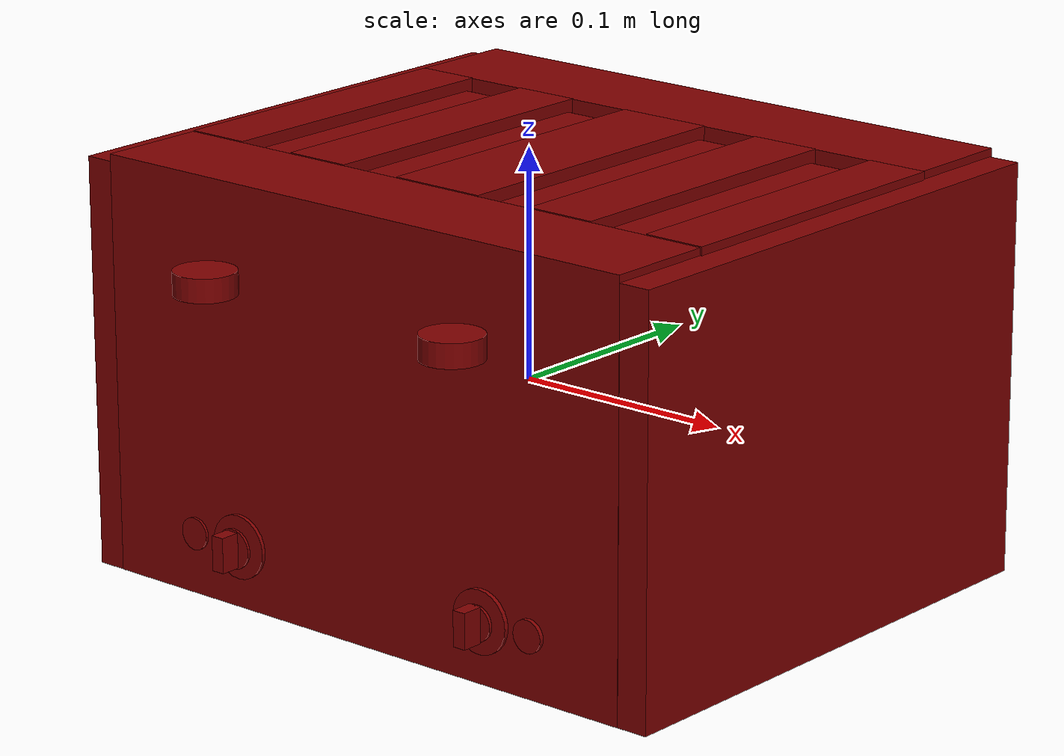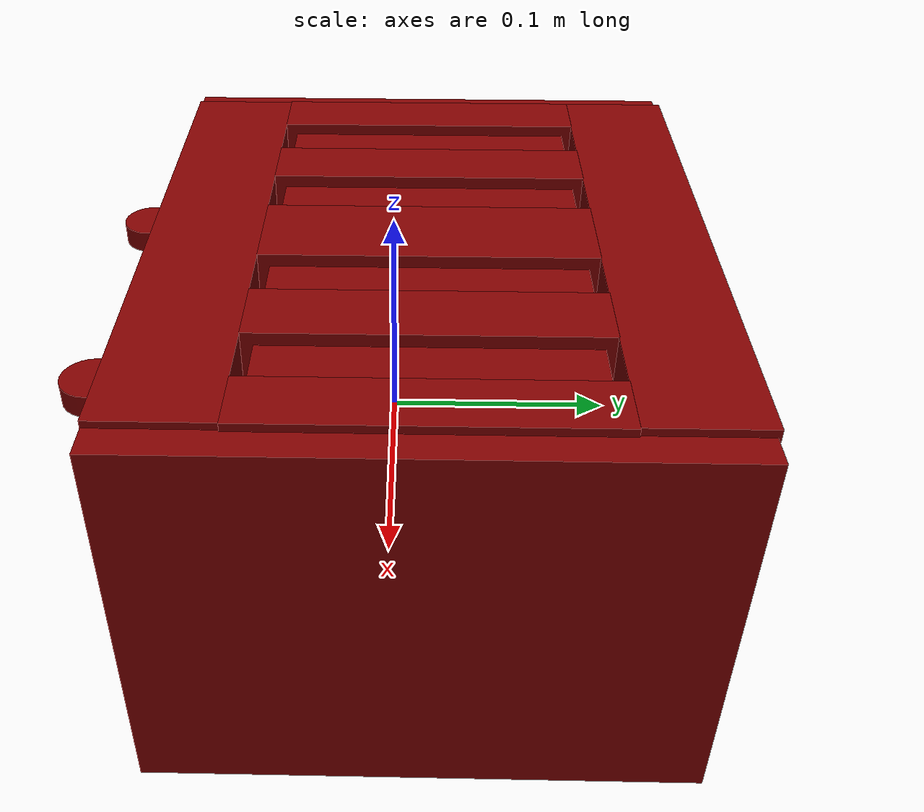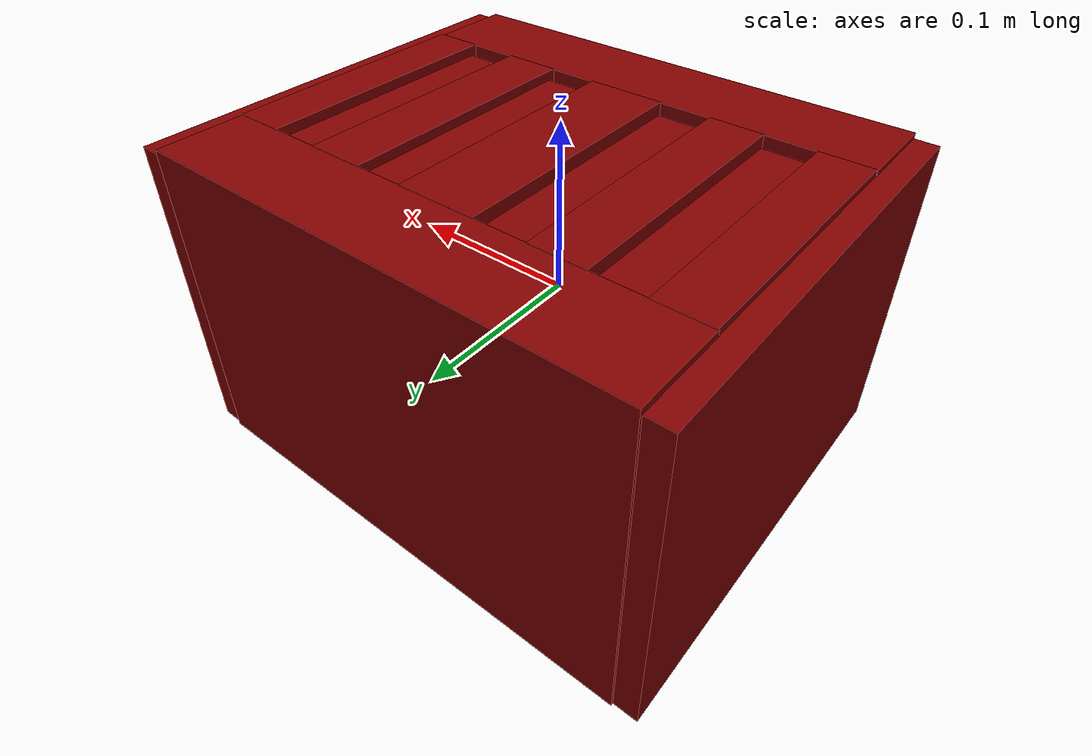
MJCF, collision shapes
<?xml version='1.0' encoding='UTF-8'?>
<mujoco model="model">
  <compiler angle="radian"/>
  <asset>
    <mesh file="visuals/Body001.obj" name="Body001_vis"/>
    <mesh file="visuals/Button001.obj" name="Button001_vis"/>
    <mesh file="visuals/Button002.obj" name="Button002_vis"/>
    <mesh file="visuals/Knob001.obj" name="Knob001_vis"/>
    <mesh file="visuals/Knob002.obj" name="Knob002_vis"/>
    <mesh file="visuals/Lever001.obj" name="Lever001_vis"/>
    <mesh file="visuals/Lever002.obj" name="Lever002_vis"/>
    <texture file="visuals/T_BC001.png" name="Body001_material" type="2d"/>
    <material name="Body001_material" rgba="1 1 1 1.0" texture="Body001_material" shininess="0.1" specular="4"/>
    <texture file="visuals/T_BC001.png" name="Button001_material" type="2d"/>
    <material name="Button001_material" rgba="1 1 1 1.0" texture="Button001_material" shininess="0.5" specular="0.3103448502657381"/>
    <texture file="visuals/T_BC001.png" name="Button002_material" type="2d"/>
    <material name="Button002_material" rgba="1 1 1 1.0" texture="Button002_material" shininess="0.5" specular="0.3103448502657381"/>
    <texture file="visuals/T_BC001.png" name="Knob001_material" type="2d"/>
    <material name="Knob001_material" rgba="1 1 1 1.0" texture="Knob001_material" shininess="0.5" specular="0.3103448502657381"/>
    <texture file="visuals/T_BC001.png" name="Knob002_material" type="2d"/>
    <material name="Knob002_material" rgba="1 1 1 1.0" texture="Knob002_material" shininess="0.5" specular="0.3103448502657381"/>
    <texture file="visuals/T_BC001.png" name="Lever001_material" type="2d"/>
    <material name="Lever001_material" rgba="1 1 1 1.0" texture="Lever001_material" shininess="0.5" specular="0.3103448502657381"/>
    <texture file="visuals/T_BC001.png" name="Lever002_material" type="2d"/>
    <material name="Lever002_material" rgba="1 1 1 1.0" texture="Lever002_material" shininess="0.5" specular="0.3103448502657381"/>
  </asset>
  <default>
    <default class="visual">
      <geom conaffinity="0" contype="0" group="1" type="mesh"/>
    </default>
    <default class="collision">
      <geom group="0" rgba="0.5 0 0 0.5"/>
    </default>
    <default class="spawn">
      <geom group="0" rgba="1 1 1 0.5" contype="0" conaffinity="0"/>
      <site group="0" rgba="1 1 1 0.5"/>
    </default>
    <default class="region">
      <geom group="1" conaffinity="0" contype="0" rgba="0 1 0 0"/>
    </default>
  </default>
  <worldbody>
    <body>
      <body name="object">
        <geom mesh="Body001_vis" type="mesh" solimp="0.998 0.998 0.001" solref="0.001 1" density="100" friction="0.95 0.3 0.1" class="visual" material="Body001_material"/>
        <geom class="collision" type="box" pos="-0.143082 0.014614 0.002146" size="0.007002524100244045 0.12076738476753235 0.08983761817216873" quat="1.0 0.0 0.0 0.0"/>
        <geom class="collision" type="box" pos="0.142438 0.014614 0.002146" size="0.007543185260146856 0.12076738476753235 0.08983761817216873" quat="1.0 0.0 0.0 0.0"/>
        <geom class="collision" type="box" pos="-0.000656 0.112086 0.003870" size="0.136514812707901 0.024617714807391167 0.09156198799610138" quat="1.0 0.0 0.0 0.0"/>
        <geom class="collision" type="box" pos="-0.000656 -0.081891 0.003719" size="0.136514812707901 0.024375740438699722 0.09141069650650024" quat="1.0 0.0 0.0 0.0"/>
        <geom class="collision" type="box" pos="0.065448 0.015127 0.017297" size="0.015857625752687454 0.07274053245782852 0.07828722149133682" quat="1.0 0.0 0.0 0.0"/>
        <geom class="collision" type="box" pos="-0.000656 0.012535 -0.080404" size="0.136514812707901 0.07725905627012253 0.007287883199751377" quat="1.0 0.0 0.0 0.0"/>
        <geom class="collision" type="cylinder" pos="-0.131358 -0.082886 -0.091699" size="0.004908865783363581 0.0035600834526121616" quat="1.0 0.0 0.0 0.0"/>
        <geom class="collision" type="cylinder" pos="0.131358 -0.082886 -0.091699" size="0.004908865783363581 0.003560083918273449" quat="1.0 0.0 0.0 0.0"/>
        <geom class="collision" type="cylinder" pos="-0.131358 0.117451 -0.091699" size="0.004908866249024868 0.003560083918273449" quat="1.0 0.0 0.0 0.0"/>
        <geom class="collision" type="cylinder" pos="0.131358 0.117451 -0.091699" size="0.004908865783363581 0.0035600841511040926" quat="1.0 0.0 0.0 0.0"/>
        <geom class="collision" type="cylinder" pos="-0.066387 -0.105122 -0.060590" size="0.01390498410910368 0.0029327014926820993" quat="0.707091748714447 -0.707118809223175 -0.0011263004271313548 0.0017355249729007483"/>
        <geom class="collision" type="cylinder" pos="0.066387 -0.105639 -0.060590" size="0.013726185075938702 0.002685973420739174" quat="0.7071068286895752 -0.7071067690849304 -1.5700925641616852e-16 1.528541539483468e-23"/>
        <geom class="collision" type="box" pos="0.122851 0.015127 0.017297" size="0.013793027959764004 0.07274053245782852 0.07828731089830399" quat="1.0 0.0 0.0 0.0"/>
        <geom class="collision" type="box" pos="-0.065532 0.015127 0.017297" size="0.015086086466908455 0.07274053245782852 0.07828732579946518" quat="1.0 0.0 0.0 0.0"/>
        <geom class="collision" type="box" pos="-0.122598 0.015127 0.017297" size="0.014300268143415451 0.07274053245782852 0.07828733325004578" quat="1.0 0.0 0.0 0.0"/>
        <geom class="collision" type="box" pos="0.000544 0.015127 0.017297" size="0.021993961185216904 0.07274053245782852 0.07828735560178757" quat="1.0 0.0 0.0 0.0"/>
        <body name="Button001">
          <joint axis="0.0 1.0 0.0" pos="-0.091198 -0.107260 -0.060783" limited="true" name="Button001_joint" range="0.0 0.0015" type="slide" damping="1" frictionloss="1" armature=".01" stiffness="0.05"/>
          <geom mesh="Button001_vis" type="mesh" solimp="0.998 0.998 0.001" solref="0.001 1" density="100" friction="0.95 0.3 0.1" class="visual" material="Button001_material"/>
          <geom class="collision" type="cylinder" pos="-0.091507 -0.107732 -0.060503" size="0.007050203159451485 0.0006315220380201936" quat="0.7071068286895752 -0.7071067690849304 -1.5700925641616852e-16 1.528541539483468e-23"/>
        </body>
        <body name="Button002">
          <joint axis="0.0 1.0 0.0" pos="0.091198 -0.107260 -0.060783" limited="true" name="Button002_joint" range="0.0 0.0015" type="slide" damping="1" frictionloss="1" armature=".01" stiffness="0.05"/>
          <geom mesh="Button002_vis" type="mesh" solimp="0.998 0.998 0.001" solref="0.001 1" density="100" friction="0.95 0.3 0.1" class="visual" material="Button002_material"/>
          <geom class="collision" type="cylinder" pos="0.091298 -0.107389 -0.060503" size="0.007050203159451485 0.0009747255826368928" quat="0.7071068286895752 -0.7071067690849304 -1.5700925641616852e-16 1.528541539483468e-23"/>
        </body>
        <body name="Knob001">
          <joint axis="0.0 1.0 0.0" pos="-0.066530 -0.109688 -0.060879" limited="true" name="Knob001_joint" range="0.0 5.235987755982989" type="hinge" damping="0.05" armature="0.001"/>
          <geom mesh="Knob001_vis" type="mesh" solimp="0.998 0.998 0.001" solref="0.001 1" density="100" friction="0.95 0.3 0.1" class="visual" material="Knob001_material"/>
          <geom class="collision" type="cylinder" pos="-0.066387 -0.110523 -0.060590" size="0.00874386914074421 0.0006149651599116623" quat="0.7071068286895752 -0.7071067690849304 -1.5700925641616852e-16 1.528541539483468e-23"/>
          <geom class="collision" type="box" pos="-0.066468 -0.114986 -0.060584" size="0.00301748001947999 0.004999999888241291 0.007700514513999224" quat="1.0 0.0 0.0 0.0"/>
        </body>
        <body name="Knob002">
          <joint axis="0.0 1.0 0.0" pos="0.066485 -0.109688 -0.060879" limited="true" name="Knob002_joint" range="0.0 5.235987755982989" type="hinge" damping="0.05" armature="0.001"/>
          <geom mesh="Knob002_vis" type="mesh" solimp="0.998 0.998 0.001" solref="0.001 1" density="100" friction="0.95 0.3 0.1" class="visual" material="Knob002_material"/>
          <geom class="collision" type="cylinder" pos="0.066387 -0.109933 -0.060590" size="0.007749210577458143 0.0007127979770302773" quat="0.7071068286895752 -0.7071067690849304 -1.5700925641616852e-16 1.528541539483468e-23"/>
          <geom class="collision" type="box" pos="0.066496 -0.112232 -0.060813" size="0.002564246766269207 0.0024083354510366917 0.006147273816168308" quat="1.0 0.0 0.0 0.0"/>
          <geom class="collision" type="box" pos="0.066302 -0.114986 -0.060584" size="0.00301748001947999 0.004999999888241291 0.007700514513999224" quat="1.0 0.0 0.0 0.0"/>
        </body>
        <body name="Lever001">
          <joint axis="0.0 0.0 -1.0" pos="-0.066553 -0.118364 0.056529" limited="true" name="Lever001_joint" range="0.0 0.067" type="slide" damping="1" frictionloss="-0.1" armature=".01" stiffness="1" springref="-0.4"/>
          <geom mesh="Lever001_vis" type="mesh" solimp="0.998 0.998 0.001" solref="0.001 1" density="100" friction="0.95 0.3 0.1" class="visual" material="Lever001_material"/>
          <geom class="collision" type="box" pos="-0.094956 0.015320 0.088746" size="0.01249995268881321 0.06762469559907913 0.001964015420526266" quat="1.0 0.0 0.0 0.0" name="sideL_slotL_floor"/>
          <geom class="collision" type="box" pos="-0.036470 0.015320 0.088746" size="0.01249999925494194 0.06762491166591644 0.001964025665074587" quat="1.0 0.0 0.0 0.0" name="sideL_slotR_floor"/>
          <geom class="collision" type="cylinder" pos="-0.066647 -0.122939 0.057167" size="0.013417379930615425 0.005154154263436794" quat="1.0 0.0 0.0 0.0" name="sideL_lever_knob"/>
        </body>
        <body name="Lever002">
          <joint axis="0.0 0.0 -1.0" pos="0.066553 -0.118364 0.056529" limited="true" name="Lever002_joint" range="0.0 0.067" type="slide" damping="1" frictionloss="-0.1" armature=".01" stiffness="1" springref="-0.4"/>
          <geom mesh="Lever002_vis" type="mesh" solimp="0.998 0.998 0.001" solref="0.001 1" density="100" friction="0.95 0.3 0.1" class="visual" material="Lever002_material"/>
          <geom class="collision" type="box" pos="0.094956 0.015320 0.088746" size="0.012499962002038956 0.06762475520372391 0.0019640212412923574" quat="1.0 0.0 0.0 0.0" name="sideR_slotR_floor"/>
          <geom class="collision" type="box" pos="0.036204 0.015320 0.088746" size="0.012499981559813023 0.06762493401765823 0.0019640212412923574" quat="1.0 0.0 0.0 0.0" name="sideR_slotL_floor"/>
          <geom class="collision" type="cylinder" pos="0.066553 -0.122939 0.057167" size="0.013417379930615425 0.005154154263436794" quat="1.0 0.0 0.0 0.0" name="sideR_lever_knob"/>
        </body>
        <geom class="region" name="reg_main" type="box" pos="0.0 0.014197000000000001 0.0" size="0.149608 0.121743 0.095436"/>
      </body>
    </body>
  </worldbody>
  <actuator>
    <motor name="Button001_joint_actuator" joint="Button001_joint" gear="0.5"/>
    <motor name="Button002_joint_actuator" joint="Button002_joint" gear="0.5"/>
    <motor name="Knob001_joint_actuator" joint="Knob001_joint" gear="5"/>
    <motor name="Knob002_joint_actuator" joint="Knob002_joint" gear="5"/>
    <motor name="Lever001_joint_actuator" joint="Lever001_joint" gear="2"/>
    <motor name="Lever002_joint_actuator" joint="Lever002_joint" gear="2"/>
  </actuator>
</mujoco>
